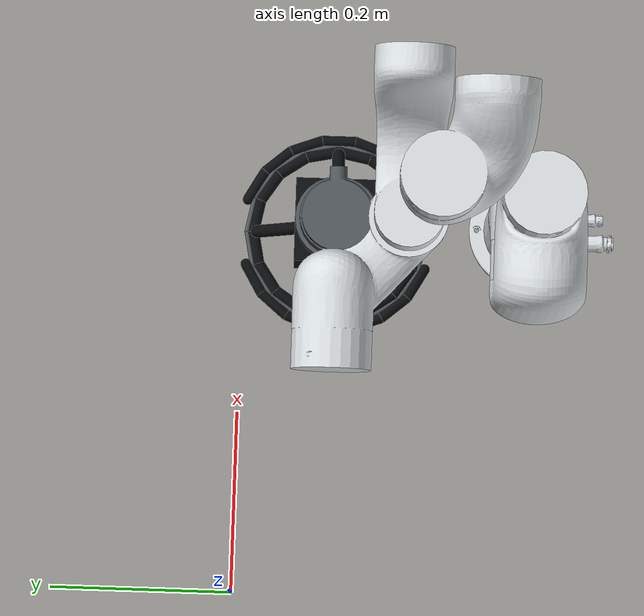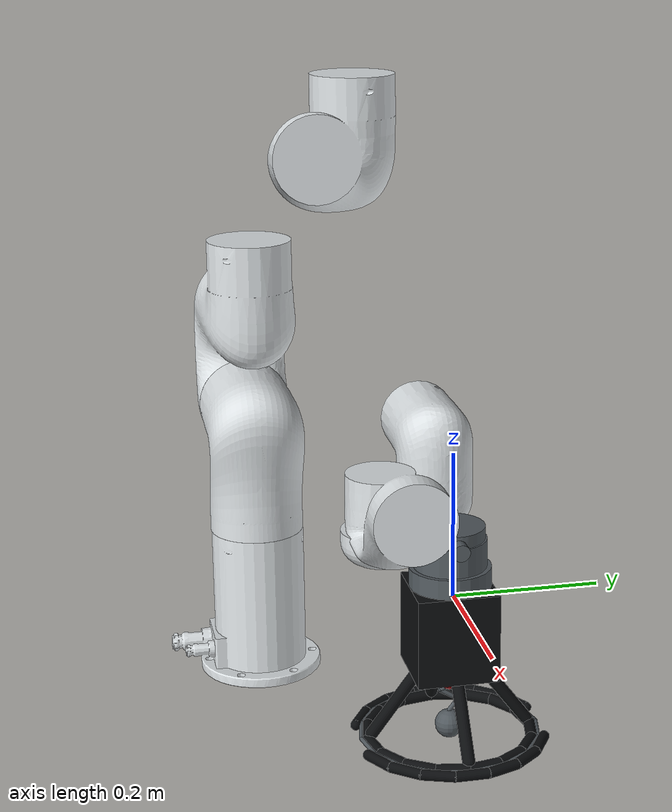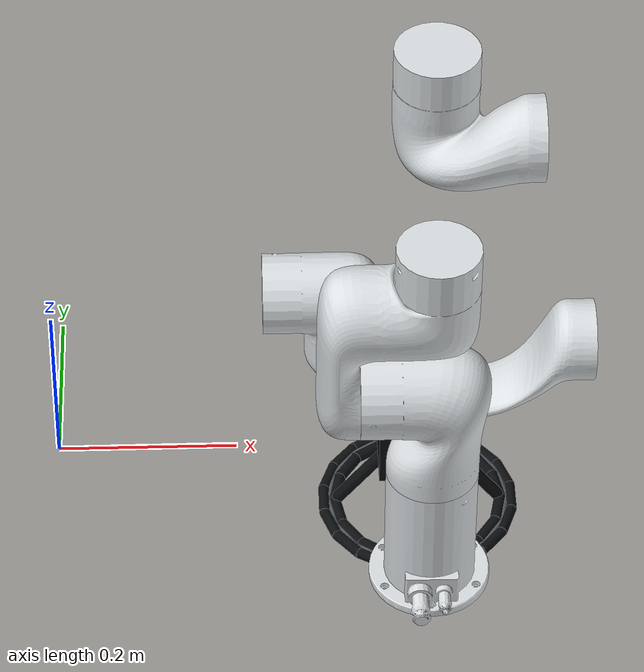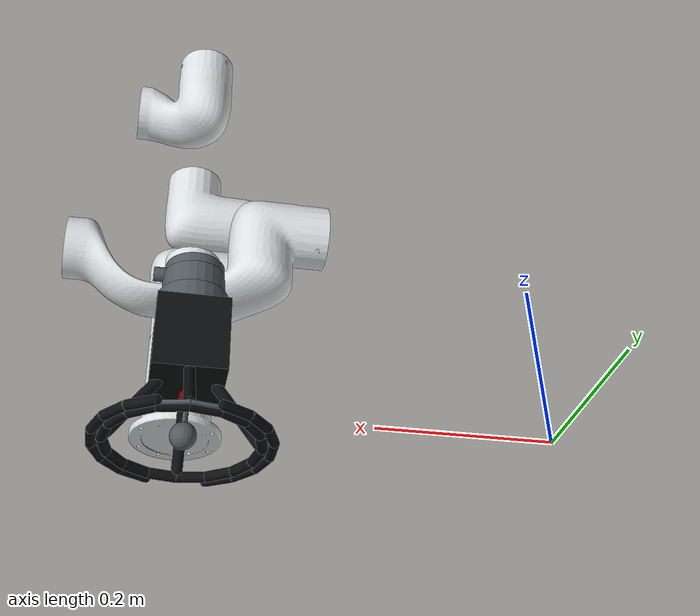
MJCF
<?xml version='1.0' encoding='utf-8'?>
<mujoco model="right xarm6">
  <compiler angle="radian" autolimits="true" meshdir="assets" />
  <option integrator="implicitfast" gravity="0 0 -9.81" />
  <asset>
    <material name="right_white" rgba="0.86 0.88 0.89 1" specular="0.32" shininess="0.42" reflectance="0.04" />
    <material name="right_gray" rgba="0.32 0.35 0.37 1" specular="0.55" shininess="0.62" reflectance="0.10" />
    <material name="right_black" rgba="0.045 0.052 0.058 1" specular="0.16" shininess="0.24" reflectance="0.02" />
    <material name="right_vacuum_rubber" rgba="0.02 0.025 0.025 1" specular="0.06" shininess="0.12" />
    <mesh file="link_base.stl" name="right_link_base" />
    <mesh file="link1.stl" name="right_link1" />
    <mesh file="link2.stl" name="right_link2" />
    <mesh file="link3.stl" name="right_link3" />
    <mesh file="link4.stl" name="right_link4" />
    <mesh file="link5.stl" name="right_link5" />
    <mesh file="link6.stl" name="right_link6" />
    <mesh file="end_tool.stl" name="right_end_tool" />
  </asset>
  <default>
    <default class="right_xarm6">
      <geom type="mesh" material="right_white" contype="0" conaffinity="0" />
      <joint axis="0 0 1" armature="0.1" range="-6.28319 6.28319" frictionloss="1" />
      <default class="right_size1">
        <joint damping="10" />
      </default>
      <default class="right_size2">
        <joint damping="5" />
      </default>
      <default class="right_size3">
        <joint damping="2" />
      </default>
      <default class="right_visual">
        <geom type="mesh" contype="0" conaffinity="0" group="2" />
      </default>
      <site size="0.001" rgba="1 0 0 1" group="4" />
    </default>
  </default>
  <worldbody>
    <body name="right_line_base" pos="0.40 -0.31 0.12" childclass="right_xarm6" euler="0 0 1.5708">
      <inertial pos="-0.021131 -0.0016302 0.056488" quat="0.696843 0.20176 0.10388 0.680376" mass="0.88556" diaginertia="0.00382023 0.00335282 0.00167725" />
      <geom mesh="right_link_base" />
      <body name="right_link1" pos="0 0 0.267">
        <inertial pos="-0.0002 0.02905 -0.01233" quat="0.978953 -0.202769 -0.00441617 -0.0227264" mass="2.382" diaginertia="0.00569127 0.00533384 0.00293865" />
        <joint name="right_joint1" class="right_size1" />
        <geom mesh="right_link1" />
        <body name="right_link2" quat="1 -1 0 0">
          <inertial pos="0.03881 -0.22783 0.03496" quat="0.635305 0.753023 0.170976 -0.010531" mass="2.2675" diaginertia="0.0294477 0.0281783 0.00383449" />
          <joint name="right_joint2" range="-2.059 2.0944" class="right_size1" />
          <geom mesh="right_link2" />
          <body name="right_link3" pos="0.0535 -0.2845 0">
            <inertial pos="0.07041 0.11631 0.0107" quat="0.845838 0.425539 -0.293179 0.132369" mass="1.875" diaginertia="0.00714132 0.00699471 0.00196753" />
            <joint name="right_joint3" range="-3.927 0.19198" class="right_size2" />
            <geom mesh="right_link3" />
            <body name="right_link4" pos="0.0775 0.3425 0" quat="1 -1 0 0">
              <inertial pos="-0.00018 0.01798 -0.02291" quat="0.99929 -0.0369702 0.00179434 -0.00701174" mass="1.3192" diaginertia="0.00489614 0.00447403 0.00132609" />
              <joint name="right_joint4" class="right_size2" />
              <geom mesh="right_link4" />
              <body name="right_link5" pos="0 0 0" quat="1 1 0 0">
                <inertial pos="0.0651 0.03096 0.00315" quat="-0.223008 0.771309 0.16027 0.574163" mass="1.33854" diaginertia="0.00241824 0.00213367 0.00108731" />
                <joint name="right_joint5" range="-1.69297 3.14159" class="right_size3" />
                <geom mesh="right_link5" />
                <body name="right_link6" pos="0.076 0.097 0" quat="1 -1 0 0">
                  <inertial pos="0.00763576 -0.00272358 0.0307029" quat="0.634077 -0.153028 -0.073538 0.754401" mass="0.838615" diaginertia="0.00129456 0.00116006 0.00078716" />
                  <joint name="right_joint6" class="right_size3" />
                  <geom material="right_gray" mesh="right_end_tool" quat="0 0 0 1" />
                  <body name="right_tie_gun_end_effector" pos="0 0 0.015">
                    <inertial pos="0 0 0.085" mass="0.45" diaginertia="0.00035 0.00035 0.00018" />
                    <geom name="right_tie_gun_flange_socket" type="cylinder" pos="0 0 -0.008" size="0.040 0.020" material="right_gray" mass="0.08" friction="0.8 0.8 0.8" contype="4" conaffinity="1" />
                    <geom name="right_tie_gun_wrist_flange" type="cylinder" pos="0 0 0.016" size="0.045 0.012" material="right_gray" mass="0.08" friction="0.8 0.8 0.8" contype="4" conaffinity="1" />
                    <geom name="right_tie_gun_body" type="box" pos="0 0 0.076" size="0.045 0.045 0.050" material="right_black" mass="0.24" friction="0.8 0.8 0.8" contype="4" conaffinity="1" />
                    <geom name="right_tie_gun_press_spring_0" type="capsule" fromto="-0.010 0 0.126 0.010 0 0.138625" size="0.0025" material="right_gray" contype="0" conaffinity="0" />
                    <geom name="right_tie_gun_press_spring_1" type="capsule" fromto="0.010 0 0.138625 -0.010 0 0.151250" size="0.0025" material="right_gray" contype="0" conaffinity="0" />
                    <geom name="right_tie_gun_press_spring_2" type="capsule" fromto="-0.010 0 0.151250 0.010 0 0.163875" size="0.0025" material="right_gray" contype="0" conaffinity="0" />
                    <geom name="right_tie_gun_press_spring_3" type="capsule" fromto="0.010 0 0.163875 0.000 0 0.176500" size="0.0025" material="right_gray" contype="0" conaffinity="0" />
                    <geom name="right_tie_gun_press_ball" type="sphere" pos="0 0 0.1925" size="0.016" material="right_gray" mass="0.03" friction="1.2 1.0 0.4" condim="6" contype="4" conaffinity="1" />
                    <geom name="right_tie_gun_support_rod_front" type="capsule" fromto="0.000 0.036 0.126 0.000 0.088 0.196" size="0.007" material="right_black" mass="0.02" friction="0.8 0.8 0.8" contype="4" conaffinity="1" />
                    <geom name="right_tie_gun_support_rod_back" type="capsule" fromto="0.000 -0.036 0.126 0.000 -0.088 0.196" size="0.007" material="right_black" mass="0.02" friction="0.8 0.8 0.8" contype="4" conaffinity="1" />
                    <geom name="right_tie_gun_support_rod_left" type="capsule" fromto="-0.036 0.000 0.126 -0.088 0.000 0.196" size="0.007" material="right_black" mass="0.02" friction="0.8 0.8 0.8" contype="4" conaffinity="1" />
                    <geom name="right_tie_gun_support_rod_right" type="capsule" fromto="0.036 0.000 0.126 0.088 0.000 0.196" size="0.007" material="right_black" mass="0.02" friction="0.8 0.8 0.8" contype="4" conaffinity="1" />
                    <geom name="right_tie_gun_left_open_jaw_0" type="capsule" fromto="0.09867 0.03591 0.20200 0.08043 0.06749 0.20200" size="0.00600" material="right_black" mass="0.01" friction="0.8 0.8 0.8" contype="4" conaffinity="1" />
                    <geom name="right_tie_gun_left_open_jaw_1" type="capsule" fromto="0.08043 0.06749 0.20200 0.05250 0.09093 0.20200" size="0.00600" material="right_black" mass="0.01" friction="0.8 0.8 0.8" contype="4" conaffinity="1" />
                    <geom name="right_tie_gun_left_open_jaw_2" type="capsule" fromto="0.05250 0.09093 0.20200 0.01823 0.10340 0.20200" size="0.00600" material="right_black" mass="0.01" friction="0.8 0.8 0.8" contype="4" conaffinity="1" />
                    <geom name="right_tie_gun_left_open_jaw_3" type="capsule" fromto="0.01823 0.10340 0.20200 -0.01823 0.10340 0.20200" size="0.00600" material="right_black" mass="0.01" friction="0.8 0.8 0.8" contype="4" conaffinity="1" />
                    <geom name="right_tie_gun_left_open_jaw_4" type="capsule" fromto="-0.01823 0.10340 0.20200 -0.05250 0.09093 0.20200" size="0.00600" material="right_black" mass="0.01" friction="0.8 0.8 0.8" contype="4" conaffinity="1" />
                    <geom name="right_tie_gun_left_open_jaw_5" type="capsule" fromto="-0.05250 0.09093 0.20200 -0.08043 0.06749 0.20200" size="0.00600" material="right_black" mass="0.01" friction="0.8 0.8 0.8" contype="4" conaffinity="1" />
                    <geom name="right_tie_gun_left_open_jaw_6" type="capsule" fromto="-0.08043 0.06749 0.20200 -0.09867 0.03591 0.20200" size="0.00600" material="right_black" mass="0.01" friction="0.8 0.8 0.8" contype="4" conaffinity="1" />
                    <geom name="right_tie_gun_right_open_jaw_0" type="capsule" fromto="-0.09867 -0.03591 0.20200 -0.08043 -0.06749 0.20200" size="0.00600" material="right_black" mass="0.01" friction="0.8 0.8 0.8" contype="4" conaffinity="1" />
                    <geom name="right_tie_gun_right_open_jaw_1" type="capsule" fromto="-0.08043 -0.06749 0.20200 -0.05250 -0.09093 0.20200" size="0.00600" material="right_black" mass="0.01" friction="0.8 0.8 0.8" contype="4" conaffinity="1" />
                    <geom name="right_tie_gun_right_open_jaw_2" type="capsule" fromto="-0.05250 -0.09093 0.20200 -0.01823 -0.10340 0.20200" size="0.00600" material="right_black" mass="0.01" friction="0.8 0.8 0.8" contype="4" conaffinity="1" />
                    <geom name="right_tie_gun_right_open_jaw_3" type="capsule" fromto="-0.01823 -0.10340 0.20200 0.01823 -0.10340 0.20200" size="0.00600" material="right_black" mass="0.01" friction="0.8 0.8 0.8" contype="4" conaffinity="1" />
                    <geom name="right_tie_gun_right_open_jaw_4" type="capsule" fromto="0.01823 -0.10340 0.20200 0.05250 -0.09093 0.20200" size="0.00600" material="right_black" mass="0.01" friction="0.8 0.8 0.8" contype="4" conaffinity="1" />
                    <geom name="right_tie_gun_right_open_jaw_5" type="capsule" fromto="0.05250 -0.09093 0.20200 0.08043 -0.06749 0.20200" size="0.00600" material="right_black" mass="0.01" friction="0.8 0.8 0.8" contype="4" conaffinity="1" />
                    <geom name="right_tie_gun_right_open_jaw_6" type="capsule" fromto="0.08043 -0.06749 0.20200 0.09867 -0.03591 0.20200" size="0.00600" material="right_black" mass="0.01" friction="0.8 0.8 0.8" contype="4" conaffinity="1" />
                    <geom name="right_tie_gun_closed_jaw_0" type="capsule" fromto="0.09200 0.00000 0.20200 0.08500 0.03521 0.20200" size="0.00650" material="right_black" mass="0.01" friction="0.8 0.8 0.8" contype="4" conaffinity="1" />
                    <geom name="right_tie_gun_closed_jaw_1" type="capsule" fromto="0.08500 0.03521 0.20200 0.06505 0.06505 0.20200" size="0.00650" material="right_black" mass="0.01" friction="0.8 0.8 0.8" contype="4" conaffinity="1" />
                    <geom name="right_tie_gun_closed_jaw_2" type="capsule" fromto="0.06505 0.06505 0.20200 0.03521 0.08500 0.20200" size="0.00650" material="right_black" mass="0.01" friction="0.8 0.8 0.8" contype="4" conaffinity="1" />
                    <geom name="right_tie_gun_closed_jaw_3" type="capsule" fromto="0.03521 0.08500 0.20200 0.00000 0.09200 0.20200" size="0.00650" material="right_black" mass="0.01" friction="0.8 0.8 0.8" contype="4" conaffinity="1" />
                    <geom name="right_tie_gun_closed_jaw_4" type="capsule" fromto="0.00000 0.09200 0.20200 -0.03521 0.08500 0.20200" size="0.00650" material="right_black" mass="0.01" friction="0.8 0.8 0.8" contype="4" conaffinity="1" />
                    <geom name="right_tie_gun_closed_jaw_5" type="capsule" fromto="-0.03521 0.08500 0.20200 -0.06505 0.06505 0.20200" size="0.00650" material="right_black" mass="0.01" friction="0.8 0.8 0.8" contype="4" conaffinity="1" />
                    <geom name="right_tie_gun_closed_jaw_6" type="capsule" fromto="-0.06505 0.06505 0.20200 -0.08500 0.03521 0.20200" size="0.00650" material="right_black" mass="0.01" friction="0.8 0.8 0.8" contype="4" conaffinity="1" />
                    <geom name="right_tie_gun_closed_jaw_7" type="capsule" fromto="-0.08500 0.03521 0.20200 -0.09200 0.00000 0.20200" size="0.00650" material="right_black" mass="0.01" friction="0.8 0.8 0.8" contype="4" conaffinity="1" />
                    <geom name="right_tie_gun_closed_jaw_8" type="capsule" fromto="-0.09200 0.00000 0.20200 -0.08500 -0.03521 0.20200" size="0.00650" material="right_black" mass="0.01" friction="0.8 0.8 0.8" contype="4" conaffinity="1" />
                    <geom name="right_tie_gun_closed_jaw_9" type="capsule" fromto="-0.08500 -0.03521 0.20200 -0.06505 -0.06505 0.20200" size="0.00650" material="right_black" mass="0.01" friction="0.8 0.8 0.8" contype="4" conaffinity="1" />
                    <geom name="right_tie_gun_closed_jaw_10" type="capsule" fromto="-0.06505 -0.06505 0.20200 -0.03521 -0.08500 0.20200" size="0.00650" material="right_black" mass="0.01" friction="0.8 0.8 0.8" contype="4" conaffinity="1" />
                    <geom name="right_tie_gun_closed_jaw_11" type="capsule" fromto="-0.03521 -0.08500 0.20200 -0.00000 -0.09200 0.20200" size="0.00650" material="right_black" mass="0.01" friction="0.8 0.8 0.8" contype="4" conaffinity="1" />
                    <geom name="right_tie_gun_closed_jaw_12" type="capsule" fromto="-0.00000 -0.09200 0.20200 0.03521 -0.08500 0.20200" size="0.00650" material="right_black" mass="0.01" friction="0.8 0.8 0.8" contype="4" conaffinity="1" />
                    <geom name="right_tie_gun_closed_jaw_13" type="capsule" fromto="0.03521 -0.08500 0.20200 0.06505 -0.06505 0.20200" size="0.00650" material="right_black" mass="0.01" friction="0.8 0.8 0.8" contype="4" conaffinity="1" />
                    <geom name="right_tie_gun_closed_jaw_14" type="capsule" fromto="0.06505 -0.06505 0.20200 0.08500 -0.03521 0.20200" size="0.00650" material="right_black" mass="0.01" friction="0.8 0.8 0.8" contype="4" conaffinity="1" />
                    <geom name="right_tie_gun_closed_jaw_15" type="capsule" fromto="0.08500 -0.03521 0.20200 0.09200 -0.00000 0.20200" size="0.00650" material="right_black" mass="0.01" friction="0.8 0.8 0.8" contype="4" conaffinity="1" />
                    <geom name="right_tie_gun_loaded_band_0" type="capsule" fromto="0.09900 0.00000 0.20100 0.09146 0.03789 0.20100" size="0.00250" material="right_gray" mass="0.01" friction="0.8 0.8 0.8" contype="4" conaffinity="1" />
                    <geom name="right_tie_gun_loaded_band_1" type="capsule" fromto="0.09146 0.03789 0.20100 0.07000 0.07000 0.20100" size="0.00250" material="right_gray" mass="0.01" friction="0.8 0.8 0.8" contype="4" conaffinity="1" />
                    <geom name="right_tie_gun_loaded_band_2" type="capsule" fromto="0.07000 0.07000 0.20100 0.03789 0.09146 0.20100" size="0.00250" material="right_gray" mass="0.01" friction="0.8 0.8 0.8" contype="4" conaffinity="1" />
                    <geom name="right_tie_gun_loaded_band_3" type="capsule" fromto="0.03789 0.09146 0.20100 0.00000 0.09900 0.20100" size="0.00250" material="right_gray" mass="0.01" friction="0.8 0.8 0.8" contype="4" conaffinity="1" />
                    <geom name="right_tie_gun_loaded_band_4" type="capsule" fromto="0.00000 0.09900 0.20100 -0.03789 0.09146 0.20100" size="0.00250" material="right_gray" mass="0.01" friction="0.8 0.8 0.8" contype="4" conaffinity="1" />
                    <geom name="right_tie_gun_loaded_band_5" type="capsule" fromto="-0.03789 0.09146 0.20100 -0.07000 0.07000 0.20100" size="0.00250" material="right_gray" mass="0.01" friction="0.8 0.8 0.8" contype="4" conaffinity="1" />
                    <geom name="right_tie_gun_loaded_band_6" type="capsule" fromto="-0.07000 0.07000 0.20100 -0.09146 0.03789 0.20100" size="0.00250" material="right_gray" mass="0.01" friction="0.8 0.8 0.8" contype="4" conaffinity="1" />
                    <geom name="right_tie_gun_loaded_band_7" type="capsule" fromto="-0.09146 0.03789 0.20100 -0.09900 0.00000 0.20100" size="0.00250" material="right_gray" mass="0.01" friction="0.8 0.8 0.8" contype="4" conaffinity="1" />
                    <geom name="right_tie_gun_loaded_band_8" type="capsule" fromto="-0.09900 0.00000 0.20100 -0.09146 -0.03789 0.20100" size="0.00250" material="right_gray" mass="0.01" friction="0.8 0.8 0.8" contype="4" conaffinity="1" />
                    <geom name="right_tie_gun_loaded_band_9" type="capsule" fromto="-0.09146 -0.03789 0.20100 -0.07000 -0.07000 0.20100" size="0.00250" material="right_gray" mass="0.01" friction="0.8 0.8 0.8" contype="4" conaffinity="1" />
                    <geom name="right_tie_gun_loaded_band_10" type="capsule" fromto="-0.07000 -0.07000 0.20100 -0.03789 -0.09146 0.20100" size="0.00250" material="right_gray" mass="0.01" friction="0.8 0.8 0.8" contype="4" conaffinity="1" />
                    <geom name="right_tie_gun_loaded_band_11" type="capsule" fromto="-0.03789 -0.09146 0.20100 -0.00000 -0.09900 0.20100" size="0.00250" material="right_gray" mass="0.01" friction="0.8 0.8 0.8" contype="4" conaffinity="1" />
                    <geom name="right_tie_gun_loaded_band_12" type="capsule" fromto="-0.00000 -0.09900 0.20100 0.03789 -0.09146 0.20100" size="0.00250" material="right_gray" mass="0.01" friction="0.8 0.8 0.8" contype="4" conaffinity="1" />
                    <geom name="right_tie_gun_loaded_band_13" type="capsule" fromto="0.03789 -0.09146 0.20100 0.07000 -0.07000 0.20100" size="0.00250" material="right_gray" mass="0.01" friction="0.8 0.8 0.8" contype="4" conaffinity="1" />
                    <geom name="right_tie_gun_loaded_band_14" type="capsule" fromto="0.07000 -0.07000 0.20100 0.09146 -0.03789 0.20100" size="0.00250" material="right_gray" mass="0.01" friction="0.8 0.8 0.8" contype="4" conaffinity="1" />
                    <geom name="right_tie_gun_loaded_band_15" type="capsule" fromto="0.09146 -0.03789 0.20100 0.09900 -0.00000 0.20100" size="0.00250" material="right_gray" mass="0.01" friction="0.8 0.8 0.8" contype="4" conaffinity="1" />
                    <site name="right_tie_gun_center_site" pos="0 0 0.14200" type="sphere" size="0.010" rgba="0 0.7 1 0.8" />
                    <site name="right_tie_gun_ring_visual_site" pos="0 0 0.20200" type="sphere" size="0.006" rgba="1 0.5 0 0.65" />
                    <site name="right_tie_gun_press_ball_center_site" pos="0 0 0.19250" type="sphere" size="0.006" rgba="0.85 0.15 0.15 0.8" />
                    <site name="right_tie_gun_press_contact_site" pos="0 0 0.20850" type="sphere" size="0.006" rgba="0.85 0.15 0.15 0.8" />
                    <site name="right_tie_gun_approach_site" pos="0 0 0.00000" type="sphere" size="0.008" rgba="0 1 0.3 0.7" />
                    <site name="right_tie_gun_neck_target_site" pos="0 0 0.19000" type="sphere" size="0.008" rgba="1 0 0 0.7" />
                    <site name="right_link_tcp" pos="0 0 0.14200" type="sphere" size="0.009" rgba="1 0 0 0.5" group="1" />
                  </body>
                </body>
              </body>
            </body>
          </body>
        </body>
      </body>
    </body>
  </worldbody>
  <actuator>
    <velocity name="right_vel1" joint="right_joint1" kv="1000" ctrlrange="-3.14159 3.14159" forcerange="-50 50" />
    <velocity name="right_vel2" joint="right_joint2" kv="1000" ctrlrange="-3.14159 3.14159" forcerange="-50 50" />
    <velocity name="right_vel3" joint="right_joint3" kv="1000" ctrlrange="-3.14159 3.14159" forcerange="-30 30" />
    <velocity name="right_vel4" joint="right_joint4" kv="1000" ctrlrange="-3.14159 3.14159" forcerange="-30 30" />
    <velocity name="right_vel5" joint="right_joint5" kv="1000" ctrlrange="-3.14159 3.14159" forcerange="-20 20" />
    <velocity name="right_vel6" joint="right_joint6" kv="1000" ctrlrange="-3.14159 3.14159" forcerange="-20 20" />
  </actuator>
</mujoco>
